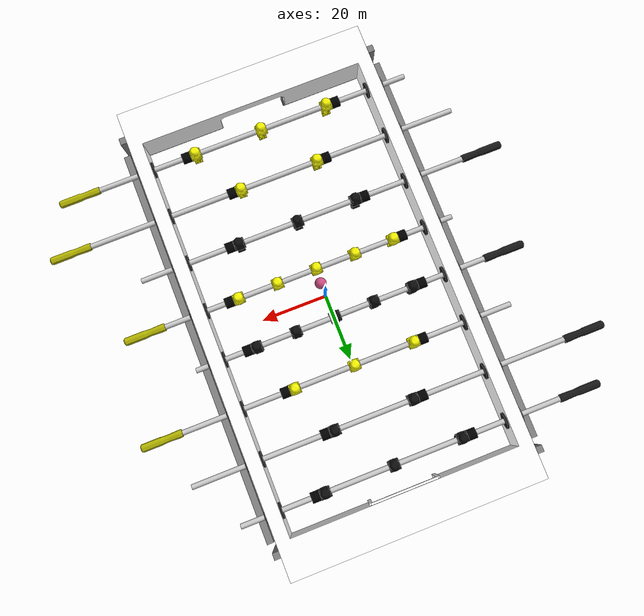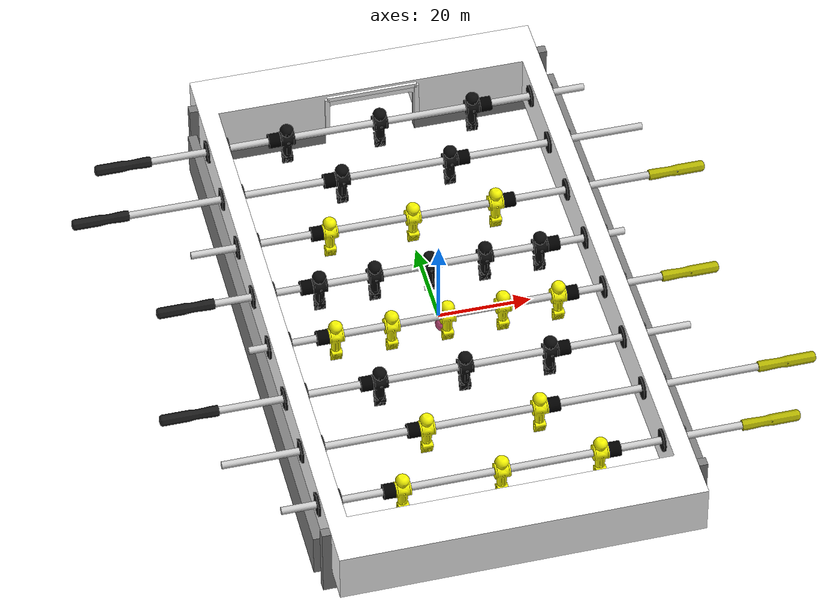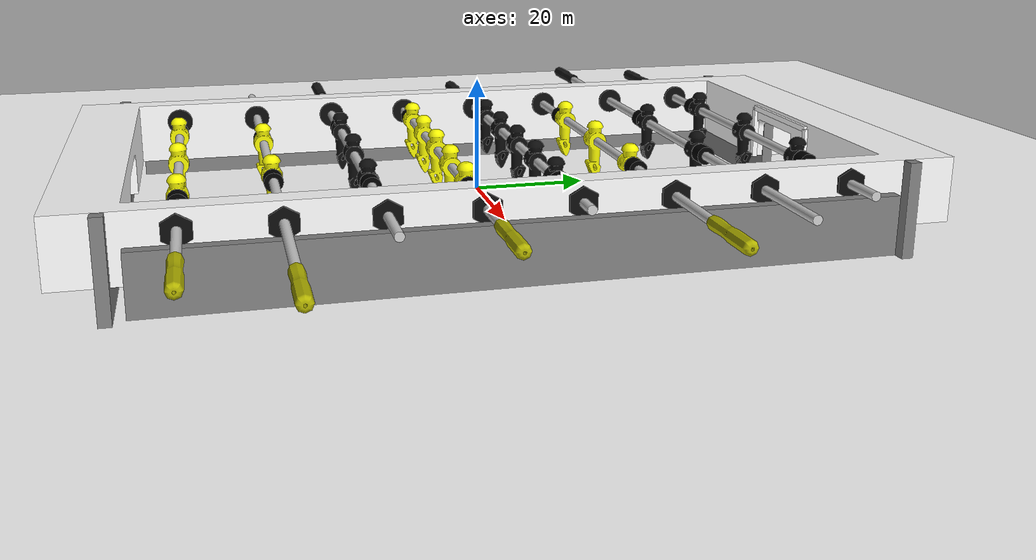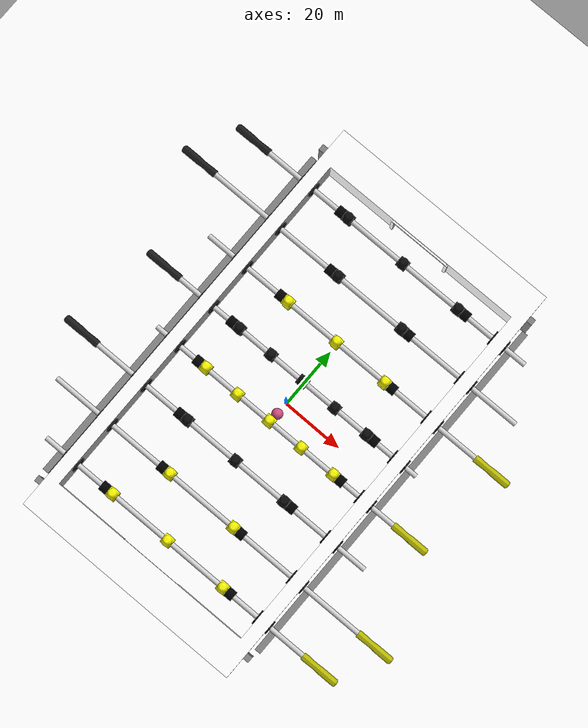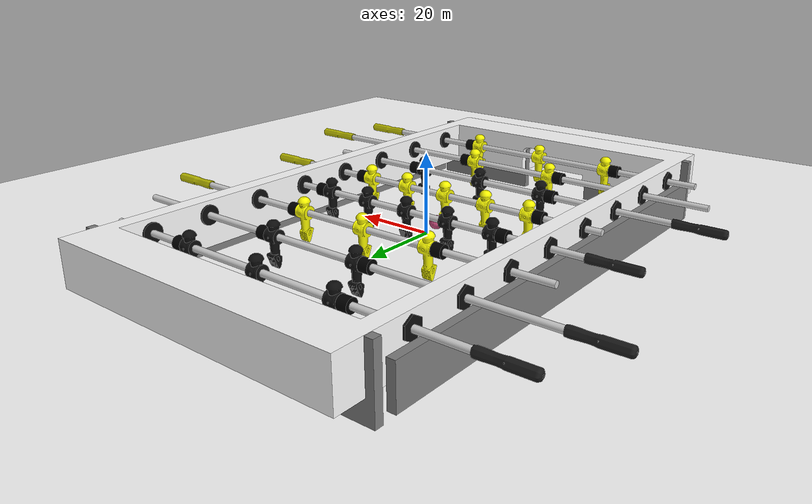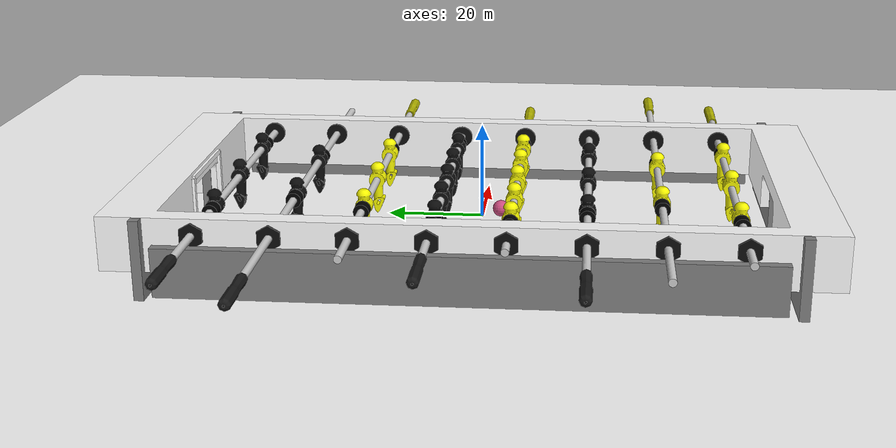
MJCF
<mujoco>
    <default>
      <default class="visual">
        <geom group="2" type="mesh"/>
      </default>
      <default class="collision">
        <geom group="3" type="mesh"/>
      </default>
    </default>

    <asset>

      <!-- Visual-only table mesh asset -->
      <mesh name="table" file="asset/foosball_table/foosball_table.obj"/> <!-- already scaled down (0.1) -->

      <!-- Player mesh -->
      <mesh name="guy" file="asset/foosman/mesh_down_foosman.obj" scale="0.1 0.1 0.1"/>

      <!-- Handle mesh -->
      <mesh name="handle" file="asset/handle/foosball_handle.obj" scale="0.1 0.1 0.1"/>
    </asset>

    <option sdf_iterations="20" sdf_initpoints="40"  >
      <flag contact="enable" />
    </option>

    <visual>
      <map force="1000"/>
    </visual>

    <statistic meansize="0.2"/>

    <default>
      <geom solref="0.004 1" solimp=".99 .99 .00001"  condim="4"/>
    </default>

    <include file="foosball_scene.xml"/>

    <worldbody>
      <!-- TABLE-->
      <body name="table" euler="90 90 0" pos="0 0 0">
        <geom type="mesh"
              name="table"
              mesh="table"
              rgba="1 1 1 1"
              group="2"
              contype="0"
              conaffinity="0" />
      </body>

      <!-- Playfield plane (the surface the ball rolls on) -->
<body name="field" pos="0 -1 0">
  <!-- type="plane": normal is +z by default -->
  <!-- size = [half_width, half_length, thickness_unused] -->
<geom name="field_plane"
      type="plane"
      size="40 80 0.1"
      friction="0.01 0.1 0.001"
      contype="1"
      conaffinity="1" />

</body>

<!-- Positive-y back wall with central goal mouth (-10..+10 open) -->
<body name="wall_pos_y_left" pos="-25 63 1">
  <!-- span x from -40 to -10: half-length = 15, centered at -25 -->
  <geom name="wall_pos_y_left"
        type="box"
        size="15 1 10"
        contype="1"
        conaffinity="1" />
</body>

<body name="wall_pos_y_right" pos="25 63 1">
  <!-- span x from +10 to +40 -->
  <geom name="wall_pos_y_right"
        type="box"
        size="15 1 10"
        contype="1"
        conaffinity="1" />
</body>

<!-- Negative-y back wall with central goal mouth (-10..+10 open) -->
<body name="wall_neg_y_left" pos="-25 -63 1">
  <geom name="wall_neg_y_left"
        type="box"
        size="15 1 10"
        contype="1"
        conaffinity="1" />
</body>

<body name="wall_neg_y_right" pos="25 -63 1">
  <geom name="wall_neg_y_right"
        type="box"
        size="15 1 10"
        contype="1"
        conaffinity="1" />
</body>

<!-- Visual goal frame at +y side (no collision) -->
<body name="goal_frame_pos" pos="0 60 5">
  <!-- left post -->
  <geom type="box" size="0.5 0.5 5"
        pos="-10 0 0"
        rgba="1 1 1 1"
        contype="0" conaffinity="0" />
  <!-- right post -->
  <geom type="box" size="0.5 0.5 5"
        pos="10 0 0"
        rgba="1 1 1 1"
        contype="0" conaffinity="0" />
  <!-- crossbar -->
  <geom type="box" size="10 0.5 0.5"
        pos="0 0 5"
        rgba="1 1 1 1"
        contype="0" conaffinity="0" />
</body>

<body name="wall_pos_z" pos="40 0 1">
  <geom name="wall_pos_z"
        type="box"
        size="1 60 5"
        contype="1"
        conaffinity="1" />
</body>

<body name="wall_pos_i" pos="-40 0 1">
  <geom name="wall_pos_i"
        type="box"
        size="1 60 5"
        contype="1"
        conaffinity="1" />
</body>

    <!-- Yellow Player--><!-- Yellow Player--><!-- Yellow Player--><!-- Yellow Player-->
      <!-- Yellow goalie Rod-->
      <body name="y_goal_rod" pos="6.902 -52.5 7.75" euler="0 90 0">
        <joint name="y_goal_linear" type="slide" axis="0 0 1" range="-300 300"/>
        <joint name="y_goal_rotation" type="hinge" axis="0 0 1" range="-180.0 180.0"/>
        <inertial pos="0 0 0" mass="1.20268" diaginertia="111.19898539 111.2074505 0.05583827"/>
        <!-- Yellow goalkeeper Aluminum Rod -->
        <geom name="y_goal_rod" type="cylinder" size="0.78 52.7" pos="0 0 0" rgba="0.8 0.8 0.8 1"/>
        <!-- Yellow Handle -->
        <body name="y_goal_rod_handle" pos="0 0 50.5" euler="180 0 0">
          <geom type="mesh" mesh="handle" mass='0.01' rgba='0.7 0.7 0.0 1' />
        </body>
        <!-- Rubber Pad-->
        <body name="y_goal_rod_r_rubber" pos="0 0 -30.435" euler="0 0 90">
          <inertial pos="0 0 0" quat="1 0 0 0" mass="0.05" diaginertia="0.00179 0.00179 0.00306"/>
          <geom name="y_goal_rod_r_rubber" type="cylinder" friction="0.1" size="1.5875 1.27" pos="0 0 0" rgba="0.0 0.0 0.0 1"/>
        </body>
        <body name="y_goal_rod_l_rubber" pos="0 0 16.63" euler="0 0 90">
          <inertial pos="0 0 0" quat="1 0 0 0" mass="0.05" diaginertia="0.00179 0.00179 0.00306"/>
          <geom name="y_goal_rod_l_rubber" type="cylinder" friction="0.1" size="1.5875 1.27" pos="0 0 0" rgba="0.0 0.0 0.0 1"/>
        </body>
        <!-- 3 Yellow Players -->
        <body name="y_goal_guy1" pos="1.49 -0.05 -27.578" euler="180 -90 0">
          <geom type="mesh" name="y_goal_guy1" mesh="guy" mass='0.07' rgba="0.95 0.95 0.0 1">

          </geom>
        </body>
        <body name="y_goal_guy2" pos="1.49 -0.05 -6.902" euler="180 -90 0">
          <geom type="mesh" name="y_goal_guy2" mesh="guy" mass='0.07' rgba="0.95 0.95 0.0 1">

          </geom>
        </body>
        <body name="y_goal_guy3" pos="1.49 -0.05 13.773" euler="180 -90 0">
          <geom type="mesh" name="y_goal_guy3" mesh="guy" mass='0.07' rgba="0.95 0.95 0.0 1">

          </geom>
        </body>
      </body>

      <!-- Yellow defender Rod-->
      <body name="y_def_rod" pos="6.6715 -37.5 7.75" euler="0 90 0">
        <joint name="y_def_linear" type="slide" axis="0 0 1" range="-250 250"/>
        <joint name="y_def_rotation" type="hinge" axis="0 0 1" range="-180.0 180.0"/>
        <inertial pos="0 0 0" mass="1.40207" diaginertia="176.18752095 176.18752095 0.05522986"/>
        <!-- Yellow defender Aluminum Rod -->
        <geom name="y_def_rod" type="cylinder" size="0.78 61.4365" pos="0 0 0" rgba="0.8 0.8 0.8 1"/>
        <!-- Yellow Handle -->
        <body name="y_def_rod_handle" pos="0 0 58.644" euler="180 0 0">
          <geom type="mesh" mesh="handle" mass='0.01' rgba='0.7 0.7 0.0 1' />
        </body>
        <!-- Rubber Pad-->
        <body name="y_def_rod_r_rubber" pos="0 0 -21.466" euler="0 0 90">
          <inertial pos="0 0 0" quat="1 0 0 0" mass="0.05" diaginertia="0.00179 0.00179 0.00306"/>
          <geom name="y_def_rod_r_rubber" type="cylinder" friction="0.1" size="1.5875 1.27" pos="0 0 0" rgba="0.0 0.0 0.0 1"/>
        </body>
        <body name="y_def_rod_l_rubber" pos="0 0 8.124" euler="0 0 90">
          <inertial pos="0 0 0" quat="1 0 0 0" mass="0.05" diaginertia="0.00179 0.00179 0.00306"/>
          <geom name="y_def_rod_l_rubber" type="cylinder" friction="0.1" size="1.5875 1.27" pos="0 0 0" rgba="0.0 0.0 0.0 1"/>
        </body>
        <!-- 2 Yellow Players -->
        <body name="y_def_guy1" pos="1.49 -0.05 -18.609" euler="180 -90 0">
          <geom type="mesh" name="y_def_guy1" mesh="guy" mass='0.07' rgba="0.95 0.95 0.0 1">

          </geom>
        </body>
        <body name="y_def_guy2" pos="1.49 -0.05 5.266" euler="180 -90 0">
          <geom type="mesh" name="y_def_guy2" mesh="guy" mass='0.07' rgba="0.95 0.95 0.0 1">

          </geom>
        </body>
      </body>

      <!-- Yellow Midfield Rod-->
      <body name="y_mid_rod" pos="6.887 -7.5 7.75" euler="0 90 0">
        <joint name="y_mid_linear" type="slide" axis="0 0 1" range="-500 500"/>
        <joint name="y_mid_rotation" type="hinge" axis="0 0 1" range="-180.0 180.0"/>
        <inertial pos="0 0 0" mass="1.1264" diaginertia="91.364224 91.364224 0.044368"/>
        <!-- Yellow Midfield Aluminum Rod -->
        <geom type="cylinder" size="0.78 49.365" pos="0 0 0" rgba="0.8 0.8 0.8 1"/>
        <!-- Yellow Handle -->
        <body name="y_mid_rod_handle" pos="0 0 46.34" euler="180 0 0">
          <geom type="mesh" mesh="handle" mass='0.01' rgba='0.7 0.7 0.0 1' />
        </body>
        <!-- Rubber Pad-->
        <body name="y_mid_rod_r_rubber" pos="0 0 -33.695" euler="0 0 90">
          <inertial pos="0 0 0" quat="1 0 0 0" mass="0.05" diaginertia="0.00179 0.00179 0.00306"/>
          <geom name="y_mid_rod_r_rubber" type="cylinder" friction="0.1" size="1.5875 1.27" pos="0 0 0" rgba="0.0 0.0 0.0 1"/>
        </body>
        <body name="y_mid_rod_l_rubber" pos="0 0 19.92" euler="0 0 90">
          <inertial pos="0 0 0" quat="1 0 0 0" mass="0.05" diaginertia="0.00179 0.00179 0.00306"/>
          <geom name="y_mid_rod_l_rubber" type="cylinder" friction="0.1" size="1.5875 1.27" pos="0 0 0" rgba="0.0 0.0 0.0 1"/>
        </body>
        <!-- 5 Yellow Players -->
        <body name="y_mid_guy1" pos="1.49 -0.05 -30.837" euler="180 -90 0">
          <geom type="mesh" name="y_mid_guy1" mesh="guy" mass="0.07" rgba="0.95 0.95 0.0 1">

          </geom>
        </body>
        <body name="y_mid_guy2" pos="1.49 -0.05 -18.862" euler="180 -90 0">
          <geom type="mesh" name="y_mid_guy2" mesh="guy" mass="0.07" rgba="0.95 0.95 0.0 1">

          </geom>
        </body>
        <body name="y_mid_guy3" pos="1.49 -0.05 -6.887" euler="180 -90 0">
          <geom type="mesh" name="y_mid_guy3" mesh="guy" mass="0.07" rgba="0.95 0.95 0.0 1">

          </geom>
        </body>
        <body name="y_mid_guy4" pos="1.49 -0.05 5.088" euler="180 -90 0">
          <geom type="mesh" name="y_mid_guy4" mesh="guy" mass="0.07" rgba="0.95 0.95 0.0 1">

          </geom>
        </body>
        <body name="y_mid_guy5" pos="1.49 -0.05 17.063" euler="180 -90 0">
          <geom type="mesh" name="y_mid_guy5" mesh="guy" mass="0.07" rgba="0.95 0.95 0.0 1">

          </geom>
        </body>
      </body>

      <!-- Yellow attacker Rod-->
      <body name="y_attack_rod" pos="6.784 22.5 7.75" euler="0 90 0">
        <joint name="y_attack_linear" type="slide" axis="0 0 1" range="-300 300"/>
        <joint name="y_attack_rotation" type="hinge" axis="0 0 1" range="-180.0 180.0"/>
        <inertial pos="0 0 0" quat="1 0 0 0" mass="1.25706" diaginertia="126.98281568 126.98281568 0.0495159"/>
        <!-- Yellow attacker Aluminum Rod -->
        <geom name="y_attack_rod" type="cylinder" size="0.78 55.08625" pos="0 0 0" rgba="0.8 0.8 0.8 1"/>
        <!-- Yellow Handle -->
        <body name="y_attack_rod_handle" pos="0 0 52.069" euler="180 0 0">
          <geom type="mesh" mesh="handle" mass='0.01' rgba='0.7 0.7 0.0 1' />
        </body>
        <!-- Rubber Pad-->
        <body name="y_attack_rod_r_rubber" pos="0 0 -27.816" euler="0 0 90">
          <inertial pos="0 0 0" quat="1 0 0 0" mass="0.05" diaginertia="0.00179 0.00179 0.00306"/>
          <geom name="y_attack_rod_r_rubber" type="cylinder" friction="0.1" size="1.5875 1.27" pos="0 0 0" rgba="0.0 0.0 0.0 1"/>
        </body>
        <body name="y_attack_rod_l_rubber" pos="0 0 14.249" euler="0 0 90">
          <inertial pos="0 0 0" quat="1 0 0 0" mass="0.05" diaginertia="0.00179 0.00179 0.00306"/>
          <geom name="y_attack_rod_l_rubber" type="cylinder" friction="0.1" size="1.5875 1.27" pos="0 0 0" rgba="0.0 0.0 0.0 1"/>
        </body>
        <!-- 3 Yellow Players -->
        <body name="y_attack_guy1" pos="1.49 -0.05 -24.959" euler="180 -90 0">
          <geom type="mesh" name="y_attack_guy1" mesh="guy" mass='0.07' rgba="0.95 0.95 0.0 1">

          </geom>
        </body>
        <body name="y_attack_guy2" pos="1.49 -0.05 -6.784" euler="180 -90 0">
          <geom type="mesh" name="y_attack_guy2" mesh="guy" mass='0.07' rgba="0.95 0.95 0.0 1">

          </geom>
        </body>
        <body name="y_attack_guy3" pos="1.49 -0.05 11.391" euler="180 -90 0">
          <geom type="mesh" name="y_attack_guy3" mesh="guy" mass='0.07' rgba="0.95 0.95 0.0 1">

          </geom>
        </body>
      </body>

    <!-- Black Player--><!-- Black Player--><!-- Black Player--><!-- Black Player-->
      <!-- Black goalie Rod-->
      <body name="b_goal_rod" pos="-6.902 52.5 7.75" euler="0 -90 180">
        <joint name="b_goal_linear" type="slide" axis="0 0 1" range="-300 300"/>
        <joint name="b_goal_rotation" type="hinge" axis="0 0 1" range="-180.0 180.0"/>
        <inertial pos="0 0 0" mass="1.20268" diaginertia="111.19898539 111.2074505 0.05583827"/>
        <!-- Black goalkeeper Aluminum Rod -->
        <geom name="b_goal_rod" type="cylinder" size="0.78 52.7" pos="0 0 0" rgba="0.8 0.8 0.8 1"/>
        <!-- Black Handle -->
        <body name="b_goal_rod_handle" pos="0 0 50.5" euler="180 0 0">
          <geom type="mesh" mesh="handle" mass='0.01' rgba='0.1 0.1 0.1 1' />
        </body>
        <!-- Rubber Pad -->
        <body name="b_goal_rod_r_rubber" pos="0 0 -30.435" euler="0 0 90">
          <inertial pos="0 0 0" quat="1 0 0 0" mass="0.05" diaginertia="0.00179 0.00179 0.00306"/>
          <geom name="b_goal_rod_r_rubber" type="cylinder" friction="0.1" size="1.5875 1.27" pos="0 0 0" rgba="0.0 0.0 0.0 1"/>
        </body>
        <body name="b_goal_rod_l_rubber" pos="0 0 16.63" euler="0 0 90">
          <inertial pos="0 0 0" quat="1 0 0 0" mass="0.05" diaginertia="0.00179 0.00179 0.00306"/>
          <geom name="b_goal_rod_l_rubber" type="cylinder" friction="0.1" size="1.5875 1.27" pos="0 0 0" rgba="0.0 0.0 0.0 1"/>
        </body>
        <!-- 3 Black Players -->
        <body name="b_goal_guy1" pos="1.49 -0.05 -27.578" euler="180 -90 0">
            <geom type="mesh" name="b_goal_guy1" mesh="guy" mass='0.07' rgba="0.05 0.05 0.05 1">

            </geom>
        </body>
        <body name="b_goal_guy2" pos="1.49 -0.05 -6.902" euler="180 -90 0">
            <geom type="mesh" name="b_goal_guy2" mesh="guy" mass='0.07' rgba="0.05 0.05 0.05 1">

            </geom>
        </body>
        <body name="b_goal_guy3" pos="1.49 -0.05 13.773" euler="180 -90 0">
            <geom type="mesh" name="b_goal_guy3" mesh="guy" mass='0.07' rgba="0.05 0.05 0.05 1">

            </geom>
        </body>
      </body>

      <!-- Black defender Rod-->
      <body name="b_def_rod" pos="-6.6715 37.5 7.75" euler="0 -90 180">
        <joint name="b_def_linear" type="slide" axis="0 0 1" range="-250 250"/>
        <joint name="b_def_rotation" type="hinge" axis="0 0 1" range="-180.0 180.0"/>
        <inertial pos="0 0 0" mass="1.40207" diaginertia="176.18752095 176.18752095 0.05522986"/>
        <!-- Black defender Aluminum Rod -->
        <geom name="b_def_rod" type="cylinder" size="0.78 61.4365" pos="0 0 0" rgba="0.8 0.8 0.8 1"/>
        <!-- Black Handle -->
        <body name="b_def_rod_handle" pos="0 0 58.644" euler="180 0 0">
          <geom type="mesh" mesh="handle" mass='0.01' rgba='0.1 0.1 0.1 1' />
        </body>
        <!-- Rubber Pad -->
        <body name="b_def_rod_r_rubber" pos="0 0 -21.466" euler="0 0 90">
          <inertial pos="0 0 0" quat="1 0 0 0" mass="0.05" diaginertia="0.00179 0.00179 0.00306"/>
          <geom name="b_def_rod_r_rubber" type="cylinder" friction="0.1" size="1.5875 1.27" pos="0 0 0" rgba="0.0 0.0 0.0 1"/>
        </body>
        <body name="b_def_rod_l_rubber" pos="0 0 8.124" euler="0 0 90">
          <inertial pos="0 0 0" quat="1 0 0 0" mass="0.05" diaginertia="0.00179 0.00179 0.00306"/>
          <geom name="b_def_rod_l_rubber" type="cylinder" friction="0.1" size="1.5875 1.27" pos="0 0 0" rgba="0.0 0.0 0.0 1"/>
        </body>
        <!-- 2 Black Players -->
        <body name="b_def_guy1" pos="1.49 -0.05 -18.609" euler="180 -90 0">
            <geom type="mesh" name="b_def_guy1" mesh="guy" mass='0.07' rgba="0.05 0.05 0.05 1">

            </geom>
        </body>
        <body name="b_def_guy2" pos="1.49 -0.05 5.266" euler="180 -90 0">
            <geom type="mesh" name="b_def_guy2" mesh="guy" mass='0.07' rgba="0.05 0.05 0.05 1">

            </geom>
        </body>
      </body>

      <!-- Black Midfield Rod-->
      <body name="b_mid_rod" pos="-6.887 7.5 7.75" euler="0 -90 180">
        <joint name="b_mid_linear" type="slide" axis="0 0 1" range="-500 500"/>
        <joint name="b_mid_rotation" type="hinge" axis="0 0 1" range="-180.0 180.0"/>
        <inertial pos="0 0 0" mass="1.1264" diaginertia="91.364224 91.364224 0.044368"/>
        <!-- Black Midfield Aluminum Rod -->
        <geom name="b_mid_rod" type="cylinder" size="0.78 49.365" pos="0 0 0" rgba="0.8 0.8 0.8 1"/>
        <!-- Black Handle -->
        <body name="b_mid_rod_handle" pos="0 0 46.34" euler="180 0 0">
          <geom type="mesh" mesh="handle" mass='0.01' rgba='0.1 0.1 0.1 1' />
        </body>
        <!-- Rubber Pad -->
        <body name="b_mid_rod_r_rubber" pos="0 0 -33.695" euler="0 0 90">
          <inertial pos="0 0 0" quat="1 0 0 0" mass="0.05" diaginertia="0.00179 0.00179 0.00306"/>
          <geom name="b_mid_rod_r_rubber" type="cylinder" friction="0.1" size="1.5875 1.27" pos="0 0 0" rgba="0.0 0.0 0.0 1"/>
        </body>
        <body name="b_mid_rod_l_rubber" pos="0 0 19.92" euler="0 0 90">
          <inertial pos="0 0 0" quat="1 0 0 0" mass="0.05" diaginertia="0.00179 0.00179 0.00306"/>
          <geom name="b_mid_rod_l_rubber" type="cylinder" friction="0.1" size="1.5875 1.27" pos="0 0 0" rgba="0.0 0.0 0.0 1"/>
        </body>
        <!-- 5 Players -->
        <body name="b_mid_guy1" pos="1.49 -0.05 -30.837" euler="180 -90 0">
            <geom type="mesh" name="b_mid_guy1" mesh="guy" mass="0.07"   rgba="0.05 0.05 0.05 1">

            </geom>
        </body>
        <body name="b_mid_guy2" pos="1.49 -0.05 -18.862" euler="180 -90 0">
            <geom type="mesh" name="b_mid_guy2" mesh="guy" mass="0.07"   rgba="0.05 0.05 0.05 1">

            </geom>
        </body>
        <body name="b_mid_guy3" pos="1.49 -0.05 -6.887" euler="180 -90 0">
            <geom type="mesh" name="b_mid_guy3" mesh="guy" mass="0.07"   rgba="0.05 0.05 0.05 1">

            </geom>
        </body>
        <body name="b_mid_guy4" pos="1.49 -0.05 5.088" euler="180 -90 0">
            <geom type="mesh" name="b_mid_guy4" mesh="guy" mass="0.07"   rgba="0.05 0.05 0.05 1">

            </geom>
        </body>
        <body name="b_mid_guy5" pos="1.49 -0.05 17.063" euler="180 -90 0">
            <geom type="mesh" name="b_mid_guy5" mesh="guy" mass="0.07"   rgba="0.05 0.05 0.05 1">

            </geom>
        </body>
      </body>

      <!-- Black attacker Rod-->
      <body name="b_attack_rod" pos="-6.784 -22.5 7.75" euler="0 -90 180">
        <joint name="b_attack_linear" type="slide" axis="0 0 1" range="-300 300"/>
        <joint name="b_attack_rotation" type="hinge" axis="0 0 1" range="-180.0 180.0"/>
        <inertial pos="0 0 0" quat="1 0 0 0" mass="1.25706" diaginertia="126.98281568 126.98281568 0.0495159"/>
        <!-- Black attacker Aluminum Rod -->
        <geom name="b_attack_rod" type="cylinder" size="0.78 55.08625" pos="0 0 0" rgba="0.8 0.8 0.8 1"/>
        <!-- Black Handle -->
        <body name="b_attack_rod_handle" pos="0 0 52.069" euler="180 0 0">
          <geom type="mesh" mesh="handle" mass='0.01' rgba='0.1 0.1 0.1 1' />
        </body>
        <!-- Rubber Pad -->
        <body name="b_attack_rod_r_rubber" pos="0 0 -27.816" euler="0 0 90">
          <inertial pos="0 0 0" quat="1 0 0 0" mass="0.05" diaginertia="0.00179 0.00179 0.00306"/>
          <geom name="b_attack_rod_r_rubber" type="cylinder" friction="0.1" size="1.5875 1.27" pos="0 0 0" rgba="0.0 0.0 0.0 1"/>
        </body>
        <body name="b_attack_rod_l_rubber" pos="0 0 14.249" euler="0 0 90">
          <inertial pos="0 0 0" quat="1 0 0 0" mass="0.05" diaginertia="0.00179 0.00179 0.00306"/>
          <geom name="b_attack_rod_l_rubber" type="cylinder" friction="0.1" size="1.5875 1.27" pos="0 0 0" rgba="0.0 0.0 0.0 1"/>
        </body>
        <!-- 3 Black Players -->
        <body name="b_attack_guy1" pos="1.49 -0.05 -24.959" euler="180 -90 0">
            <geom type="mesh" name="b_attack_guy1" mesh="guy" mass='0.07' rgba="0.05 0.05 0.05 1">

            </geom>
        </body>
        <body name="b_attack_guy2" pos="1.49 -0.05 -6.784" euler="180 -90 0">
            <geom type="mesh" name="b_attack_guy2" mesh="guy" mass='0.07' rgba="0.05 0.05 0.05 1">

            </geom>
        </body>
        <body name="b_attack_guy3" pos="1.49 -0.05 11.391" euler="180 -90 0">
            <geom type="mesh" name="b_attack_guy3" mesh="guy" mass='0.07' rgba="0.05 0.05 0.05 1">

            </geom>
        </body>
      </body>

      <!-- MATCH BALL-->
        <!-- allow slight damping so it doesn't jitter forever -->

        <!-- RESTORE friction so tangential contact forces exist -->
              <!-- rgba="0.8 0.3 0.5 1" -->

<body name="ball" pos="0 -4 1.75">
  <joint name="ball_x" type="slide" axis="1 0 0" frictionloss="0" damping="0.01"/>
  <joint name="ball_y" type="slide" axis="0 1 0" frictionloss="0" damping="0.01"/>

  <geom name="ball" type="sphere" size="1.73355" mass="0.1"
        rgba="0.8 0.3 0.5 1"
        friction="0.01 0.1 10"
        contype="1" conaffinity="1"/>
</body>

    </worldbody>

    <!-- exclude the contact between the rods and the table -->
    <contact>
      <exclude body1="y_goal_rod" body2="table"/>
      <exclude body1="y_def_rod" body2="table"/>
      <exclude body1="y_mid_rod" body2="table"/>
      <exclude body1="y_attack_rod" body2="table"/>

      <exclude body1="b_goal_rod" body2="table"/>
      <exclude body1="b_def_rod" body2="table"/>
      <exclude body1="b_mid_rod" body2="table"/>
      <exclude body1="b_attack_rod" body2="table"/>

      <exclude body1="y_goal_rod_handle" body2="table"/>
      <exclude body1="y_def_rod_handle" body2="table"/>
      <exclude body1="y_mid_rod_handle" body2="table"/>
      <exclude body1="y_attack_rod_handle" body2="table"/>

      <exclude body1="b_goal_rod_handle" body2="table"/>
      <exclude body1="b_def_rod_handle" body2="table"/>
      <exclude body1="b_mid_rod_handle" body2="table"/>
      <exclude body1="b_attack_rod_handle" body2="table"/>

      <exclude body1="table_side_rubber_y_goal_r" body2="y_goal_rod"/>
      <exclude body1="table_side_rubber_y_goal_l" body2="y_goal_rod"/>
      <exclude body1="table_side_rubber_y_def_r" body2="y_def_rod"/>
      <exclude body1="table_side_rubber_y_def_l" body2="y_def_rod"/>
      <exclude body1="table_side_rubber_y_mid_r" body2="y_mid_rod"/>
      <exclude body1="table_side_rubber_y_mid_l" body2="y_mid_rod"/>
      <exclude body1="table_side_rubber_y_attack_r" body2="y_attack_rod"/>
      <exclude body1="table_side_rubber_y_attack_l" body2="y_attack_rod"/>

      <exclude body1="table_side_rubber_b_goal_r" body2="b_goal_rod"/>
      <exclude body1="table_side_rubber_b_goal_l" body2="b_goal_rod"/>
      <exclude body1="table_side_rubber_b_def_r" body2="b_def_rod"/>
      <exclude body1="table_side_rubber_b_def_l" body2="b_def_rod"/>
      <exclude body1="table_side_rubber_b_mid_r" body2="b_mid_rod"/>
      <exclude body1="table_side_rubber_b_mid_l" body2="b_mid_rod"/>
      <exclude body1="table_side_rubber_b_attack_r" body2="b_attack_rod"/>
      <exclude body1="table_side_rubber_b_attack_l" body2="b_attack_rod"/>
    </contact>

  <!-- Adjust the controller parameters (e.g., kp, kv) to replicate the simulated motion in the real-world environment, as physical dynamics may differ -->
  <actuator>
      <position name="y_goal_linear" joint="y_goal_linear" ctrlrange="-10.0 10.0" kp="20000" kv="300" />
      <position name="y_goal_rotation" joint="y_goal_rotation" ctrlrange="-2.5 2.5" kp="70000" kv="1000" />
      <position name="y_def_linear" joint="y_def_linear" ctrlrange="-20.0 20.0" kp="10000" kv="200" />
      <position name="y_def_rotation" joint="y_def_rotation" ctrlrange="-2.5 2.5" kp="40000" kv="500" />
      <position name="y_mid_linear" joint="y_mid_linear" ctrlrange="-7.0 7.0" kp="40000" kv="500" />
      <position name="y_mid_rotation" joint="y_mid_rotation" ctrlrange="-2.5 2.5" kp="150000" kv="2000" />
      <position name="y_attack_linear" joint="y_attack_linear" ctrlrange="-12.0 12.0" kp="20000" kv="300" />
      <position name="y_attack_rotation" joint="y_attack_rotation" ctrlrange="-2.5 2.5" kp="70000" kv="1000" />

      <position name="b_goal_linear" joint="b_goal_linear" ctrlrange="-10.0 10.0" kp="20000" kv="300" />
      <position name="b_goal_rotation" joint="b_goal_rotation" ctrlrange="-2.5 2.5" kp="70000" kv="1000" />
      <position name="b_def_linear" joint="b_def_linear" ctrlrange="-20.0 20.0" kp="10000" kv="200" />
      <position name="b_def_rotation" joint="b_def_rotation" ctrlrange="-2.5 2.5" kp="40000" kv="500" />
      <position name="b_mid_linear" joint="b_mid_linear" ctrlrange="-7.0 7.0" kp="40000" kv="500" />
      <position name="b_mid_rotation" joint="b_mid_rotation" ctrlrange="-2.5 2.5" kp="150000" kv="2000" />
      <position name="b_attack_linear" joint="b_attack_linear" ctrlrange="-12.0 12.0" kp="20000" kv="300" />
      <position name="b_attack_rotation" joint="b_attack_rotation" ctrlrange="-2.5 2.5" kp="70000" kv="1000" />
    </actuator>

  </mujoco>

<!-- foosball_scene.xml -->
<mujoco>
    <compiler texturedir="asset"/>

    <statistic meansize=".05"/>

    <default>
      <geom solref="0.004 1" solimp=".99 .99 .00001"  condim="4"/>
    </default>

    <asset>
      <texture name="field_pattern" type="2d" file="field.png"/>
      <material name="field" texture="field_pattern"/>

      <texture name="black_color" type="2d" file="black.png"/>
      <material name="black" texture="black_color"/>

      <mesh name="outside_rubber" file="asset/outside_rubber/table_outside_rubber.obj" scale='0.1 0.1 0.1'/>
    </asset>

    <worldbody>
      <light directional="true"  specular="0.2 0.2 0.2" pos="0 0 4" dir="0 0 -1"/>

      <body name="background" pos="0 0 -5" euler="0 0 0">
        <geom type="plane" size="500 500 .01" rgba="1.0 1.0 1.0 1.0" contype="0" conaffinity="0"/>
      </body>

      <body name="ground" pos="0 0 -0.03" euler="0 0 180">
        <geom type="plane" size="35 63 0.01" material="field" friction="0.01 0.1 10"/>
      </body>

    <!-- Table's inside rubber pads -->
      <body name="table_side_rubber_y_goal_r">
        <geom type="cylinder" pos="-33.75 -52.5 7.75" euler="90 90 0" size="2.4 0.25"
              contype="5" conaffinity="5" rgba='0.05 0.05 0.05 1' friction="0.01" group="2"/>
      </body>
      <body name="table_side_rubber_y_goal_l">
        <geom type="cylinder" pos="33.75 -52.5 7.75" euler="90 90 0" size="2.4 0.25"
              contype="5" conaffinity="5" rgba='0.05 0.05 0.05 1' friction="0.01" group="2"/>
      </body>
      <body name="table_side_rubber_y_def_r">
        <geom type="cylinder" pos="-33.75 -37.5 7.75" euler="90 90 0" size="2.4 0.25"
              contype="5" conaffinity="5" rgba='0.05 0.05 0.05 1' friction="0.01" group="2"/>
      </body>
      <body name="table_side_rubber_y_def_l">
        <geom type="cylinder" pos="33.75 -37.5 7.75" euler="90 90 0" size="2.4 0.25"
              contype="5" conaffinity="5" rgba='0.05 0.05 0.05 1' friction="0.01" group="2"/>
      </body>
      <body name="table_side_rubber_y_mid_r">
        <geom type="cylinder" pos="-33.75 -7.5 7.75" euler="90 90 0" size="2.4 0.25"
              contype="5" conaffinity="5" rgba='0.05 0.05 0.05 1' friction="0.01" group="2"/>
      </body>
      <body name="table_side_rubber_y_mid_l">
        <geom type="cylinder" pos="33.75 -7.5 7.75" euler="90 90 0" size="2.4 0.25"
              contype="5" conaffinity="5" rgba='0.05 0.05 0.05 1' friction="0.01" group="2"/>
      </body>
      <body name="table_side_rubber_y_attack_r">
        <geom type="cylinder" pos="-33.75 22.5 7.75" euler="90 90 0" size="2.4 0.25"
              contype="5" conaffinity="5" rgba='0.05 0.05 0.05 1' friction="0.01" group="2"/>
      </body>
      <body name="table_side_rubber_y_attack_l">
        <geom type="cylinder" pos="33.75 22.5 7.75" euler="90 90 0" size="2.4 0.25"
              contype="5" conaffinity="5" rgba='0.05 0.05 0.05 1' friction="0.01" group="2"/>
      </body>

      <body name="table_side_rubber_b_goal_r">
        <geom type="cylinder" pos="-33.75 52.5 7.75" euler="90 90 0" size="2.4 0.25"
              contype="5" conaffinity="5" rgba='0.05 0.05 0.05 1' friction="0.01" group="2"/>
      </body>
      <body name="table_side_rubber_b_goal_l">
        <geom type="cylinder" pos="33.75 52.5 7.75" euler="90 90 0" size="2.4 0.25"
              contype="5" conaffinity="5" rgba='0.05 0.05 0.05 1' friction="0.01" group="2"/>
      </body>
      <body name="table_side_rubber_b_def_r">
        <geom type="cylinder" pos="-33.75 37.5 7.75" euler="90 90 0" size="2.4 0.25"
              contype="5" conaffinity="5" rgba='0.05 0.05 0.05 1' friction="0.01" group="2"/>
      </body>
      <body name="table_side_rubber_b_def_l">
        <geom type="cylinder" pos="33.75 37.5 7.75" euler="90 90 0" size="2.4 0.25"
              contype="5" conaffinity="5" rgba='0.05 0.05 0.05 1' friction="0.01" group="2"/>
      </body>
      <body name="table_side_rubber_b_mid_r">
        <geom type="cylinder" pos="-33.75 7.5 7.75" euler="90 90 0" size="2.4 0.25"
              contype="5" conaffinity="5" rgba='0.05 0.05 0.05 1' friction="0.01" group="2"/>
      </body>
      <body name="table_side_rubber_b_mid_l">
        <geom type="cylinder" pos="33.75 7.5 7.75" euler="90 90 0" size="2.4 0.25"
              contype="5" conaffinity="5" rgba='0.05 0.05 0.05 1' friction="0.01" group="2"/>
      </body>
      <body name="table_side_rubber_b_attack_r">
        <geom type="cylinder" pos="-33.75 -22.5 7.75" euler="90 90 0" size="2.4 0.25"
              contype="5" conaffinity="5" rgba='0.05 0.05 0.05 1' friction="0.01" group="2"/>
      </body>
      <body name="table_side_rubber_b_attack_l">
        <geom type="cylinder" pos="33.75 -22.5 7.75" euler="90 90 0" size="2.4 0.25"
              contype="5" conaffinity="5" rgba='0.05 0.05 0.05 1' friction="0.01" group="2"/>
      </body>

    <!-- Table's outside rubber pads -->
      <body name="outside_rubber_y_goal_r" pos="-38.35 -52.5 7.75" euler="0 0 90">
        <geom contype="0" conaffinity="0" type="mesh" mesh="outside_rubber" rgba='0.05 0.05 0.05 1' group="2"></geom>
      </body>
      <body name="outside_rubber_y_goal_l" pos="38.35 -52.5 7.75" euler="0 0 90">
        <geom contype="0" conaffinity="0" type="mesh" mesh="outside_rubber" rgba='0.05 0.05 0.05 1' group="2"></geom>
      </body>
      <body name="outside_rubber_y_def_r" pos="-38.35 -37.5 7.75" euler="0 0 90">
        <geom contype="0" conaffinity="0" type="mesh" mesh="outside_rubber" rgba='0.05 0.05 0.05 1' group="2"></geom>
      </body>
      <body name="outside_rubber_y_def_l" pos="38.35 -37.5 7.75" euler="0 0 90">
        <geom contype="0" conaffinity="0" type="mesh" mesh="outside_rubber" rgba='0.05 0.05 0.05 1' group="2"></geom>
      </body>
      <body name="outside_rubber_y_mid_r" pos="-38.35 -7.5 7.75" euler="0 0 90">
        <geom contype="0" conaffinity="0" type="mesh" mesh="outside_rubber" rgba='0.05 0.05 0.05 1' group="2"></geom>
      </body>
      <body name="outside_rubber_y_mid_l" pos="38.35 -7.5 7.75" euler="0 0 90">
        <geom contype="0" conaffinity="0" type="mesh" mesh="outside_rubber" rgba='0.05 0.05 0.05 1' group="2"></geom>
      </body>
      <body name="outside_rubber_y_attack_r" pos="-38.35 22.5 7.75" euler="0 0 90">
        <geom contype="0" conaffinity="0" type="mesh" mesh="outside_rubber" rgba='0.05 0.05 0.05 1' group="2"></geom>
      </body>
      <body name="outside_rubber_y_attack_l" pos="38.35 22.5 7.75" euler="0 0 90">
        <geom contype="0" conaffinity="0" type="mesh" mesh="outside_rubber" rgba='0.05 0.05 0.05 1' group="2"></geom>
      </body>

      <body name="outside_rubber_b_goal_r" pos="-38.35 52.5 7.75" euler="0 0 90">
        <geom contype="0" conaffinity="0" type="mesh" mesh="outside_rubber" rgba='0.05 0.05 0.05 1' group="2"></geom>
      </body>
      <body name="outside_rubber_b_goal_l" pos="38.35 52.5 7.75" euler="0 0 90">
        <geom contype="0" conaffinity="0" type="mesh" mesh="outside_rubber" rgba='0.05 0.05 0.05 1' group="2"></geom>
      </body>
      <body name="outside_rubber_b_def_r" pos="-38.35 37.5 7.75" euler="0 0 90">
        <geom contype="0" conaffinity="0" type="mesh" mesh="outside_rubber" rgba='0.05 0.05 0.05 1' group="2"></geom>
      </body>
      <body name="outside_rubber_b_def_l" pos="38.35 37.5 7.75" euler="0 0 90">
        <geom contype="0" conaffinity="0" type="mesh" mesh="outside_rubber" rgba='0.05 0.05 0.05 1' group="2"></geom>
      </body>
      <body name="outside_rubber_b_mid_r" pos="-38.35 7.5 7.75" euler="0 0 90">
        <geom contype="0" conaffinity="0" type="mesh" mesh="outside_rubber" rgba='0.05 0.05 0.05 1' group="2"></geom>
      </body>
      <body name="outside_rubber_b_mid_l" pos="38.35 7.5 7.75" euler="0 0 90">
        <geom contype="0" conaffinity="0" type="mesh" mesh="outside_rubber" rgba='0.05 0.05 0.05 1' group="2"></geom>
      </body>
      <body name="outside_rubber_b_attack_r" pos="-38.35 -22.5 7.75" euler="0 0 90">
        <geom contype="0" conaffinity="0" type="mesh" mesh="outside_rubber" rgba='0.05 0.05 0.05 1' group="2"></geom>
      </body>
      <body name="outside_rubber_b_attack_l" pos="38.35 -22.5 7.75" euler="0 0 90">
        <geom contype="0" conaffinity="0" type="mesh" mesh="outside_rubber" rgba='0.05 0.05 0.05 1' group="2"></geom>
      </body>

    <!-- Table serface painting -->
      <body name="table_surface_1">
        <geom type="plane" pos="0 -65.6 11.15" size="38.1 5.5 0.01"
              contype="0" conaffinity="0" rgba='0.05 0.05 0.05 1' group="2"/>
      </body>
      <body name="table_surface_2">
        <geom type="plane" pos="0 65.6 11.15" size="38.1 5.5 0.01"
              contype="0" conaffinity="0" rgba='0.05 0.05 0.05 1' group="2"/>
      </body>
      <body name="table_surface_3">
        <geom type="plane" pos="-36.05 0 11.15" size="2.05 60.1 0.01"
              contype="0" conaffinity="0" rgba='0.05 0.05 0.05 1' group="2"/>
      </body>
      <body name="table_surface_4">
        <geom type="plane" pos="36.05 0 11.15" size="2.05 60.1 0.01"
              contype="0" conaffinity="0" rgba='0.05 0.05 0.05 1' group="2"/>
      </body>

    </worldbody>
  </mujoco>
